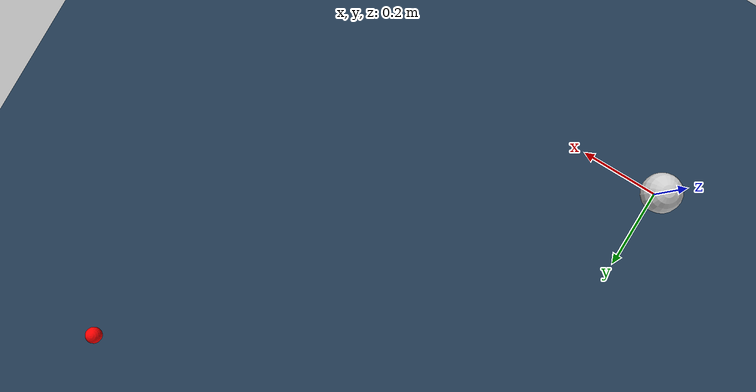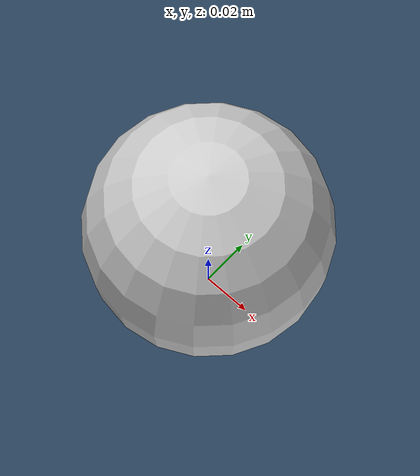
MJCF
<mujoco model="point2d">

  <compiler angle="radian" inertiafromgeom="true" autolimits="true"/>
  <option timestep="0.01" integrator="Euler" gravity="0 0 0">
    <flag contact="enable"/>
  </option>

  <asset>
    <texture name="groundplane_tex" type="2d" builtin="checker"
             rgb1="0.2 0.3 0.4" rgb2="0.1 0.2 0.3"
             width="300" height="300" mark="edge" markrgb="0.8 0.8 0.8"/>
    <material name="groundplane" texture="groundplane_tex"
              texuniform="true" texrepeat="10 10" reflectance="0"/>
  </asset>

  <worldbody>
    <geom name="floor" type="plane" size="2 2 0.01" material="groundplane"/>
    <light pos="0 0 2" dir="0 0 -1" directional="true"/>

    <!-- Planar point mass: two slide joints in x,y; z fixed by the body pos -->
    <body name="point" pos="0 0 0.05">
      <joint name="jx" type="slide" axis="1 0 0" damping="0.0" range="-2 2"/>
      <joint name="jy" type="slide" axis="0 1 0" damping="0.0" range="-2 2"/>
      <geom name="ball" type="sphere" size="0.05" rgba="0.8 0.8 0.8 1"/>
      <site name="point_site" pos="0 0 0" size="0.01"/>
    </body>

    <!-- Goal marker (purely visual) -->
    <site name="goal_site" pos="1.0 1.0 0.05" size="0.02" rgba="1 0 0 1"/>
  </worldbody>

  <actuator>
    <!-- Motors apply generalized force on slide joints -->
    <motor name="ax" joint="jx" ctrlrange="-2 2" ctrllimited="true" gear="1"/>
    <motor name="ay" joint="jy" ctrlrange="-2 2" ctrllimited="true" gear="1"/>
  </actuator>

</mujoco>
